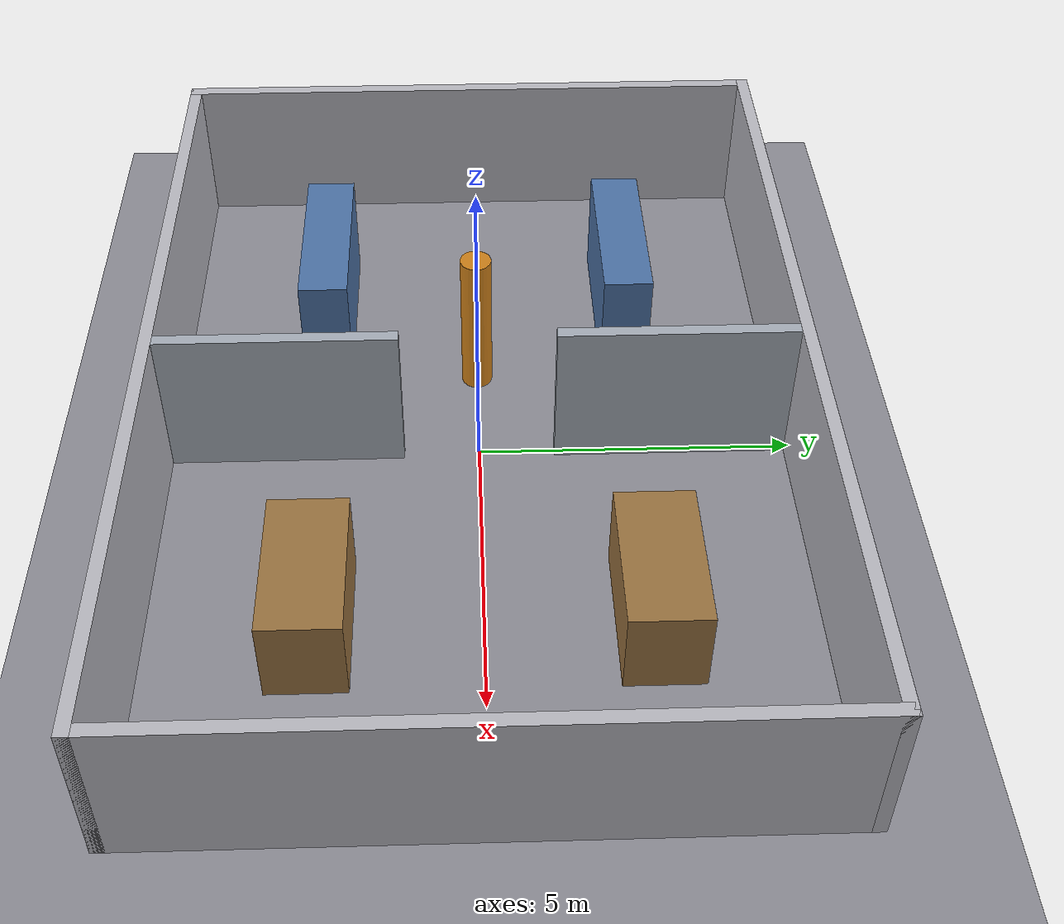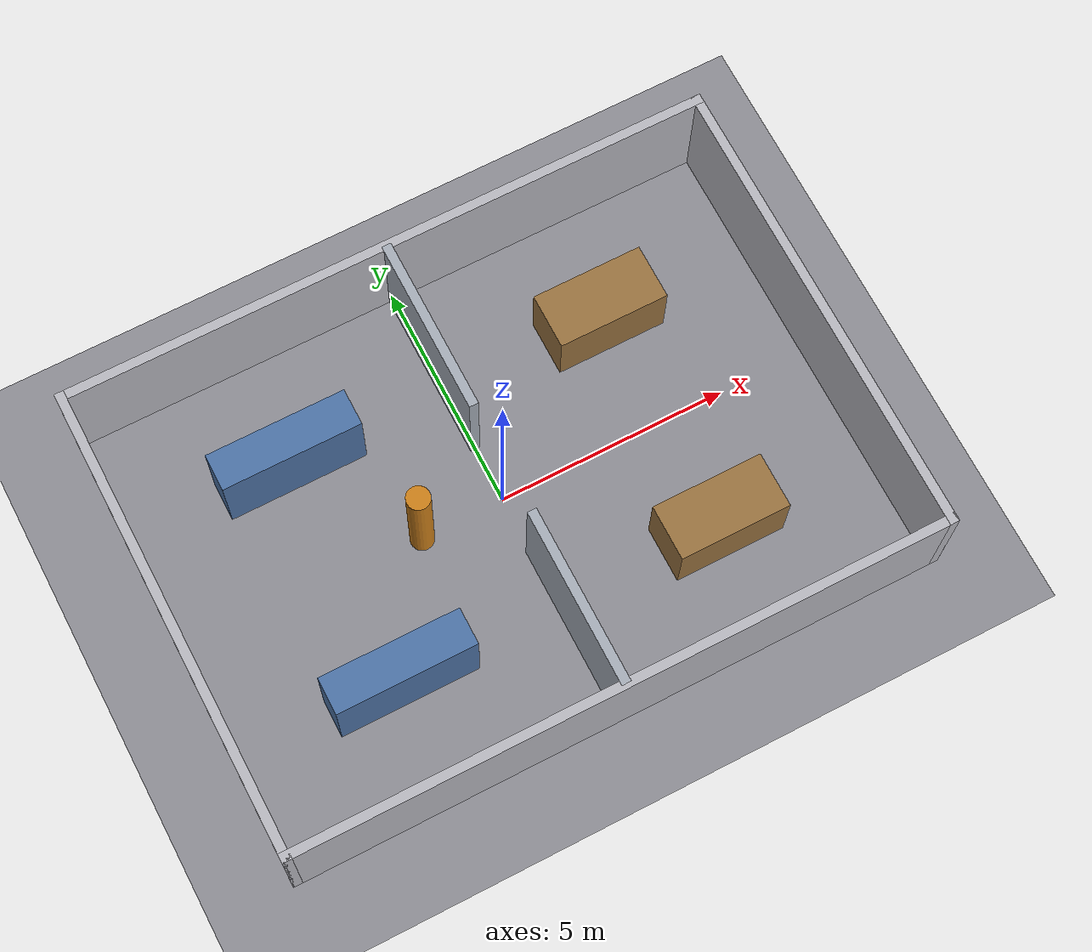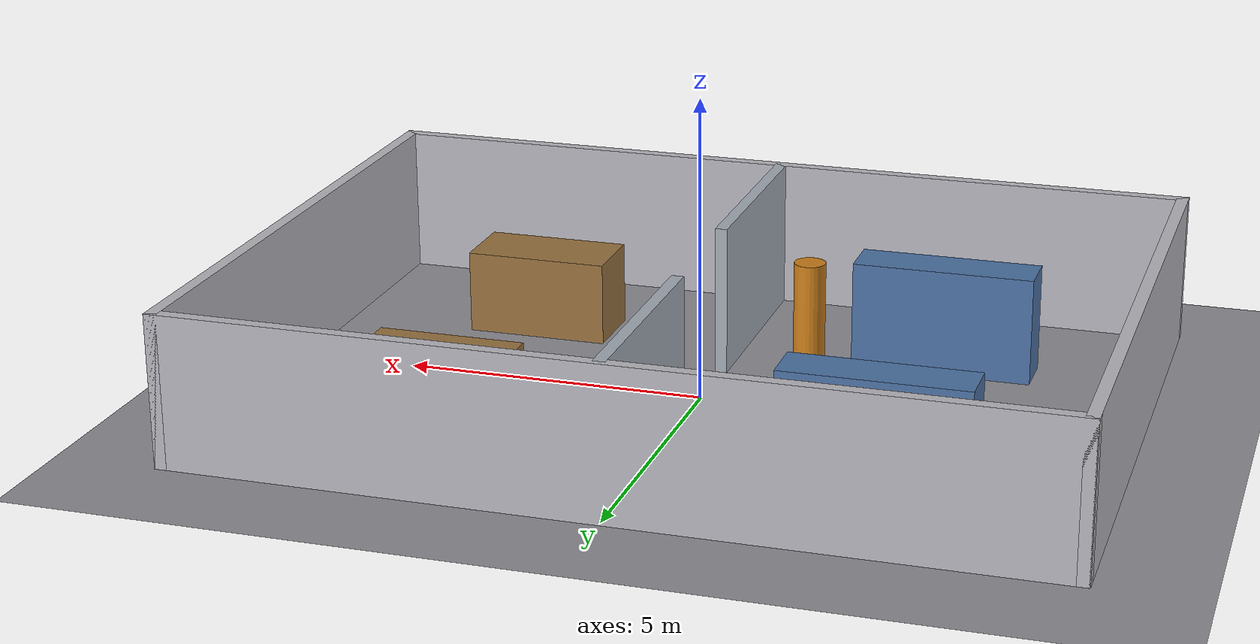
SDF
<?xml version="1.0" ?>
<sdf version="1.8">
  <world name="test1">

    <!-- PHYSICS                                                       -->
    <physics name="1ms" type="ignored">
      <max_step_size>0.001</max_step_size>
      <real_time_factor>1.0</real_time_factor>
    </physics>

    <!-- Required world plugins for Gazebo Harmonic -->
    <plugin filename="gz-sim-physics-system"
            name="gz::sim::systems::Physics"/>
    <plugin filename="gz-sim-user-commands-system"
            name="gz::sim::systems::UserCommands"/>
    <plugin filename="gz-sim-scene-broadcaster-system"
            name="gz::sim::systems::SceneBroadcaster"/>
    <plugin filename="gz-sim-sensors-system"
            name="gz::sim::systems::Sensors">
      <render_engine>ogre2</render_engine>
    </plugin>

    <!-- INDOOR LIGHTING                                              -->
    <light name="ambient_fill" type="directional">
      <cast_shadows>false</cast_shadows>
      <pose>0 0 8 0 0 0</pose>
      <diffuse>0.4 0.4 0.42 1</diffuse>
      <specular>0.05 0.05 0.05 1</specular>
      <direction>0 0 -1</direction>
    </light>

    <!-- Overhead light - West Room -->
    <light name="light_west" type="point">
      <cast_shadows>false</cast_shadows>
      <pose>-3.5 0 4 0 0 0</pose>
      <diffuse>0.9 0.92 0.95 1</diffuse>
      <specular>0.2 0.2 0.2 1</specular>
      <attenuation>
        <range>15</range>
        <constant>0.5</constant>
        <linear>0.08</linear>
        <quadratic>0.01</quadratic>
      </attenuation>
    </light>

    <!-- Overhead light - East Room -->
    <light name="light_east" type="point">
      <cast_shadows>false</cast_shadows>
      <pose>3.5 0 4 0 0 0</pose>
      <diffuse>0.9 0.92 0.95 1</diffuse>
      <specular>0.2 0.2 0.2 1</specular>
      <attenuation>
        <range>15</range>
        <constant>0.5</constant>
        <linear>0.08</linear>
        <quadratic>0.01</quadratic>
      </attenuation>
    </light>

    <!-- GROUND PLANE                                                 -->
    <model name="ground_plane">
      <static>true</static>
      <link name="link">
        <collision name="collision">
          <geometry>
            <plane>
              <normal>0 0 1</normal>
              <size>30 30</size>
            </plane>
          </geometry>
        </collision>
        <visual name="visual">
          <geometry>
            <plane>
              <normal>0 0 1</normal>
              <size>30 30</size>
            </plane>
          </geometry>
          <material>
            <ambient>0.45 0.45 0.48 1</ambient>
            <diffuse>0.55 0.55 0.58 1</diffuse>
            <specular>0.05 0.05 0.05 1</specular>
          </material>
        </visual>
      </link>
    </model>

    <!-- PERIMETER WALLS (14m X x 10m Y: X from -7 to +7, Y from -5 to +5) -->

    <!-- South wall (y = -5) -->
    <model name="wall_south">
      <static>true</static>
      <pose>0 -5 1.25 0 0 0</pose>
      <link name="link">
        <collision name="col">
          <geometry><box><size>14.2 0.2 2.5</size></box></geometry>
        </collision>
        <visual name="vis">
          <geometry><box><size>14.2 0.2 2.5</size></box></geometry>
          <material>
            <ambient>0.72 0.72 0.75 1</ambient>
            <diffuse>0.72 0.72 0.75 1</diffuse>
          </material>
        </visual>
      </link>
    </model>

    <!-- North wall (y = +5) -->
    <model name="wall_north">
      <static>true</static>
      <pose>0 5 1.25 0 0 0</pose>
      <link name="link">
        <collision name="col">
          <geometry><box><size>14.2 0.2 2.5</size></box></geometry>
        </collision>
        <visual name="vis">
          <geometry><box><size>14.2 0.2 2.5</size></box></geometry>
          <material>
            <ambient>0.72 0.72 0.75 1</ambient>
            <diffuse>0.72 0.72 0.75 1</diffuse>
          </material>
        </visual>
      </link>
    </model>

    <!-- West wall (x = -7) -->
    <model name="wall_west">
      <static>true</static>
      <pose>-7 0 1.25 0 0 0</pose>
      <link name="link">
        <collision name="col">
          <geometry><box><size>0.2 10.2 2.5</size></box></geometry>
        </collision>
        <visual name="vis">
          <geometry><box><size>0.2 10.2 2.5</size></box></geometry>
          <material>
            <ambient>0.72 0.72 0.75 1</ambient>
            <diffuse>0.72 0.72 0.75 1</diffuse>
          </material>
        </visual>
      </link>
    </model>

    <!-- East wall (x = +7) -->
    <model name="wall_east">
      <static>true</static>
      <pose>7 0 1.25 0 0 0</pose>
      <link name="link">
        <collision name="col">
          <geometry><box><size>0.2 10.2 2.5</size></box></geometry>
        </collision>
        <visual name="vis">
          <geometry><box><size>0.2 10.2 2.5</size></box></geometry>
          <material>
            <ambient>0.72 0.72 0.75 1</ambient>
            <diffuse>0.72 0.72 0.75 1</diffuse>
          </material>
        </visual>
      </link>
    </model>

    <!-- INTERIOR DIVIDERS                                            -->
    <!-- Central Divider along x=0 with wide 2.4m central doorway     -->
    <!-- South segment: y = -5 to -1.2 (length 3.8m, center y=-3.1)   -->
    <!-- North segment: y = +1.2 to +5 (length 3.8m, center y=+3.1)   -->

    <model name="divider_center_south">
      <static>true</static>
      <pose>0 -3.1 1.25 0 0 0</pose>
      <link name="link">
        <collision name="col">
          <geometry><box><size>0.2 3.8 2.5</size></box></geometry>
        </collision>
        <visual name="vis">
          <geometry><box><size>0.2 3.8 2.5</size></box></geometry>
          <material>
            <ambient>0.65 0.68 0.72 1</ambient>
            <diffuse>0.65 0.68 0.72 1</diffuse>
          </material>
        </visual>
      </link>
    </model>

    <model name="divider_center_north">
      <static>true</static>
      <pose>0 3.1 1.25 0 0 0</pose>
      <link name="link">
        <collision name="col">
          <geometry><box><size>0.2 3.8 2.5</size></box></geometry>
        </collision>
        <visual name="vis">
          <geometry><box><size>0.2 3.8 2.5</size></box></geometry>
          <material>
            <ambient>0.65 0.68 0.72 1</ambient>
            <diffuse>0.65 0.68 0.72 1</diffuse>
          </material>
        </visual>
      </link>
    </model>

    <!-- STORAGE BAYS & OBSTACLES (Clear features for SLAM LiDAR)     -->

    <!-- Shelf 1 in West Room (North-West) -->
    <model name="shelf_nw">
      <static>true</static>
      <pose>-3.5 2.5 0.9 0 0 0</pose>
      <link name="link">
        <collision name="col">
          <geometry><box><size>3.0 0.8 1.8</size></box></geometry>
        </collision>
        <visual name="vis">
          <geometry><box><size>3.0 0.8 1.8</size></box></geometry>
          <material>
            <ambient>0.3 0.45 0.65 1</ambient>
            <diffuse>0.3 0.45 0.65 1</diffuse>
          </material>
        </visual>
      </link>
    </model>

    <!-- Shelf 2 in West Room (South-West) -->
    <model name="shelf_sw">
      <static>true</static>
      <pose>-3.5 -2.5 0.9 0 0 0</pose>
      <link name="link">
        <collision name="col">
          <geometry><box><size>3.0 0.8 1.8</size></box></geometry>
        </collision>
        <visual name="vis">
          <geometry><box><size>3.0 0.8 1.8</size></box></geometry>
          <material>
            <ambient>0.3 0.45 0.65 1</ambient>
            <diffuse>0.3 0.45 0.65 1</diffuse>
          </material>
        </visual>
      </link>
    </model>

    <!-- Pallet Stack in East Room (North-East) -->
    <model name="pallet_ne">
      <static>true</static>
      <pose>3.5 2.5 0.7 0 0 0</pose>
      <link name="link">
        <collision name="col">
          <geometry><box><size>2.4 1.2 1.4</size></box></geometry>
        </collision>
        <visual name="vis">
          <geometry><box><size>2.4 1.2 1.4</size></box></geometry>
          <material>
            <ambient>0.6 0.45 0.25 1</ambient>
            <diffuse>0.6 0.45 0.25 1</diffuse>
          </material>
        </visual>
      </link>
    </model>

    <!-- Pallet Stack in East Room (South-East) -->
    <model name="pallet_se">
      <static>true</static>
      <pose>3.5 -2.5 0.7 0 0 0</pose>
      <link name="link">
        <collision name="col">
          <geometry><box><size>2.4 1.2 1.4</size></box></geometry>
        </collision>
        <visual name="vis">
          <geometry><box><size>2.4 1.2 1.4</size></box></geometry>
          <material>
            <ambient>0.6 0.45 0.25 1</ambient>
            <diffuse>0.6 0.45 0.25 1</diffuse>
          </material>
        </visual>
      </link>
    </model>

    <!-- Pillar near West Entrance -->
    <model name="pillar_w">
      <static>true</static>
      <pose>-1.8 0 1.25 0 0 0</pose>
      <link name="link">
        <collision name="col">
          <geometry><cylinder><radius>0.25</radius><length>2.5</length></cylinder></geometry>
        </collision>
        <visual name="vis">
          <geometry><cylinder><radius>0.25</radius><length>2.5</length></cylinder></geometry>
          <material>
            <ambient>0.8 0.5 0.1 1</ambient>
            <diffuse>0.8 0.5 0.1 1</diffuse>
          </material>
        </visual>
      </link>
    </model>

  </world>
</sdf>
